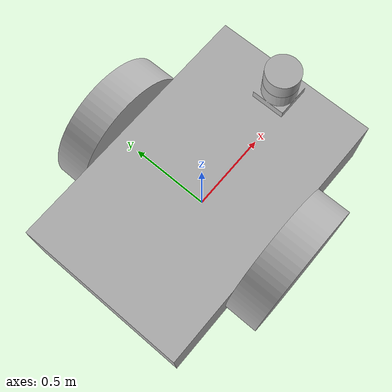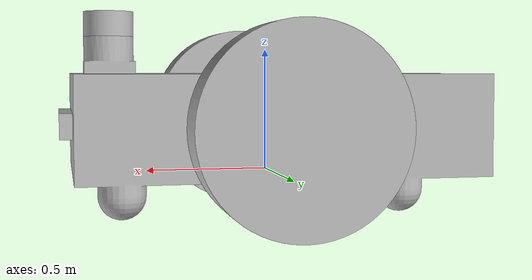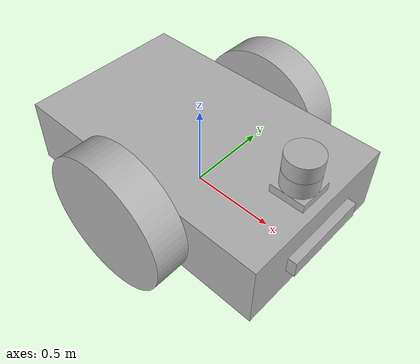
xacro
<?xml version="1.0" ?>
<robot name="trial4" xmlns:xacro="http://www.ros.org/wiki/xacro">

<xacro:include filename="$(find trial4_description)/urdf/materials.xacro" />
<xacro:include filename="$(find trial4_description)/urdf/trial4.trans" />
<xacro:include filename="$(find trial4_description)/urdf/trial4.gazebo" />
<link name="base_link">
  <inertial>
    <origin rpy="0 0 0" xyz="0.005097568731203495 -1.136428676693037e-16 0.19757168658164292"/>
    <mass value="694.9503822554891"/>
    <inertia ixx="66.955946" ixy="0.0" ixz="-0.96802" iyy="161.428655" iyz="-0.0" izz="207.621221"/>
  </inertial>
  <visual>
    <origin rpy="0 0 0" xyz="0 0 0"/>
    <geometry>
      <mesh filename="package://trial4_description/meshes/base_link.stl" scale="0.001 0.001 0.001"/>
    </geometry>
    <material name="silver"/>
  </visual>
  <collision>
    <origin rpy="0 0 0" xyz="0 0 0"/>
    <geometry>
      <mesh filename="package://trial4_description/meshes/base_link.stl" scale="0.001 0.001 0.001"/>
    </geometry>
  </collision>
</link>

<link name="right_wheel_1">
  <inertial>
    <origin rpy="0 0 0" xyz="-9.264036960195247e-17 -0.10000000000000009 2.7755575615628914e-17"/>
    <mass value="93.49379737083223"/>
    <inertia ixx="4.051398" ixy="-0.0" ixz="0.0" iyy="7.479504" iyz="0.0" izz="4.051398"/>
  </inertial>
  <visual>
    <origin rpy="0 0 0" xyz="-0.0 0.5 -0.2"/>
    <geometry>
      <mesh filename="package://trial4_description/meshes/right_wheel_1.stl" scale="0.001 0.001 0.001"/>
    </geometry>
    <material name="silver"/>
  </visual>
  <collision>
    <origin rpy="0 0 0" xyz="-0.0 0.5 -0.2"/>
    <geometry>
      <mesh filename="package://trial4_description/meshes/right_wheel_1.stl" scale="0.001 0.001 0.001"/>
    </geometry>
  </collision>
</link>

<link name="left_wheel_1">
  <inertial>
    <origin rpy="0 0 0" xyz="-9.264036960195247e-17 0.09999999999999998 2.7755575615628914e-17"/>
    <mass value="93.49379737083223"/>
    <inertia ixx="4.051398" ixy="-0.0" ixz="0.0" iyy="7.479504" iyz="0.0" izz="4.051398"/>
  </inertial>
  <visual>
    <origin rpy="0 0 0" xyz="-0.0 -0.5 -0.2"/>
    <geometry>
      <mesh filename="package://trial4_description/meshes/left_wheel_1.stl" scale="0.001 0.001 0.001"/>
    </geometry>
    <material name="silver"/>
  </visual>
  <collision>
    <origin rpy="0 0 0" xyz="-0.0 -0.5 -0.2"/>
    <geometry>
      <mesh filename="package://trial4_description/meshes/left_wheel_1.stl" scale="0.001 0.001 0.001"/>
    </geometry>
  </collision>
</link>

<link name="lidar_1">
  <inertial>
    <origin rpy="0 0 0" xyz="1.1102230246251565e-16 0.0 0.04999999999999993"/>
    <mass value="5.497787143782138"/>
    <inertia ixx="0.018326" ixy="0.0" ixz="0.0" iyy="0.018326" iyz="0.0" izz="0.027489"/>
  </inertial>
  <visual>
    <origin rpy="0 0 0" xyz="-0.65 -0.0 -0.55"/>
    <geometry>
      <mesh filename="package://trial4_description/meshes/lidar_1.stl" scale="0.001 0.001 0.001"/>
    </geometry>
    <material name="silver"/>
  </visual>
  <collision>
    <origin rpy="0 0 0" xyz="-0.65 -0.0 -0.55"/>
    <geometry>
      <mesh filename="package://trial4_description/meshes/lidar_1.stl" scale="0.001 0.001 0.001"/>
    </geometry>
  </collision>
</link>

<link name="camera_1">
  <inertial>
    <origin rpy="0 0 0" xyz="0.02499999999999991 0.0 0.0"/>
    <mass value="4.374999999999999"/>
    <inertia ixx="0.094792" ixy="0.0" ixz="0.0" iyy="0.004557" iyz="0.0" izz="0.092057"/>
  </inertial>
  <visual>
    <origin rpy="0 0 0" xyz="-0.8 -0.0 -0.2"/>
    <geometry>
      <mesh filename="package://trial4_description/meshes/camera_1.stl" scale="0.001 0.001 0.001"/>
    </geometry>
    <material name="silver"/>
  </visual>
  <collision>
    <origin rpy="0 0 0" xyz="-0.8 -0.0 -0.2"/>
    <geometry>
      <mesh filename="package://trial4_description/meshes/camera_1.stl" scale="0.001 0.001 0.001"/>
    </geometry>
  </collision>
</link>

<joint name="Rev1" type="continuous">
  <origin rpy="0 0 0" xyz="0.0 -0.5 0.2"/>
  <parent link="base_link"/>
  <child link="right_wheel_1"/>
  <axis xyz="0.0 -1.0 0.0"/>
</joint>

<joint name="Rev2" type="continuous">
  <origin rpy="0 0 0" xyz="0.0 0.5 0.2"/>
  <parent link="base_link"/>
  <child link="left_wheel_1"/>
  <axis xyz="0.0 1.0 0.0"/>
</joint>

<joint name="Rev3" type="continuous">
  <origin rpy="0 0 0" xyz="0.65 0.0 0.55"/>
  <parent link="base_link"/>
  <child link="lidar_1"/>
  <axis xyz="0.0 0.0 1.0"/>
</joint>

<joint name="Rigid4" type="fixed">
  <origin rpy="0 0 0" xyz="0.8 0.0 0.2"/>
  <parent link="base_link"/>
  <child link="camera_1"/>
</joint>

</robot>

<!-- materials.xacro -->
<robot name="trial4" xmlns:xacro="http://www.ros.org/wiki/xacro" >

<material name="silver">
  <color rgba="0.700 0.700 0.700 1.000"/>
</material>

</robot>

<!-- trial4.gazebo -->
<robot name="trial4" xmlns:xacro="http://www.ros.org/wiki/xacro" >

<xacro:property name="body_color" value="Gazebo/Silver" />

<gazebo>
  <plugin filename="libgazebo_ros_control.so" name="control"/>
</gazebo>
<gazebo reference="base_link">
  <material>${body_color}</material>
  <mu1>0.2</mu1>
  <mu2>0.2</mu2>
  <selfCollide>true</selfCollide>
  <gravity>true</gravity>
</gazebo>

<gazebo reference="right_wheel_1">
  <material>${body_color}</material>
  <mu1>0.2</mu1>
  <mu2>0.2</mu2>
  <selfCollide>true</selfCollide>
</gazebo>

<gazebo reference="left_wheel_1">
  <material>${body_color}</material>
  <mu1>0.2</mu1>
  <mu2>0.2</mu2>
  <selfCollide>true</selfCollide>
</gazebo>

<gazebo reference="lidar_1">
  <material>${body_color}</material>
  <mu1>0.2</mu1>
  <mu2>0.2</mu2>
  <selfCollide>true</selfCollide>
</gazebo>

<gazebo reference="camera_1">
  <material>${body_color}</material>
  <mu1>0.2</mu1>
  <mu2>0.2</mu2>
  <selfCollide>true</selfCollide>
</gazebo>

</robot>
